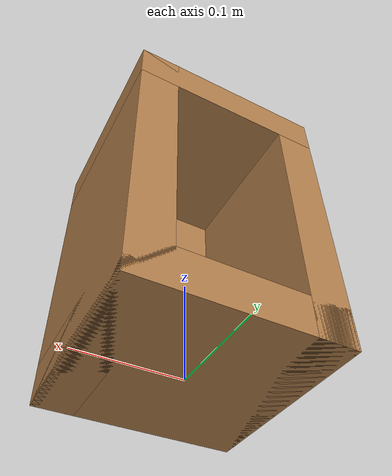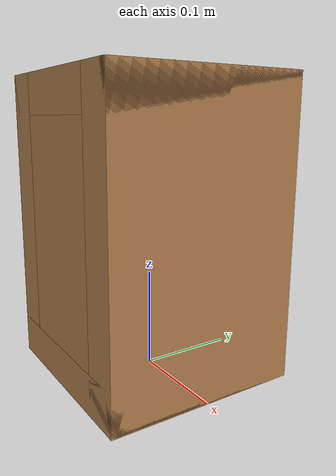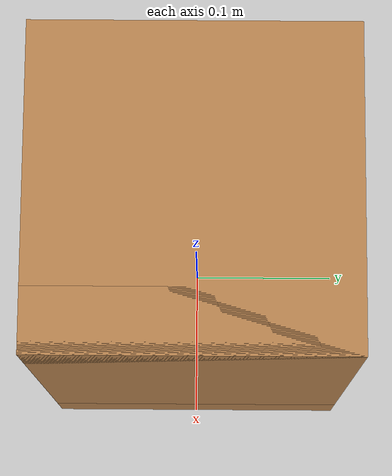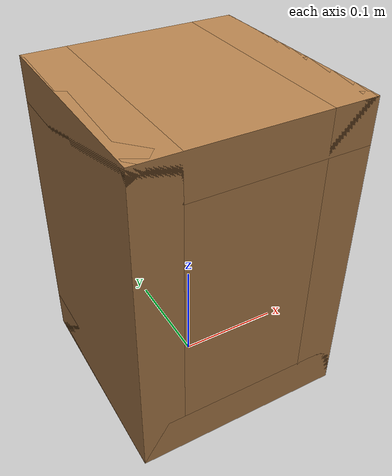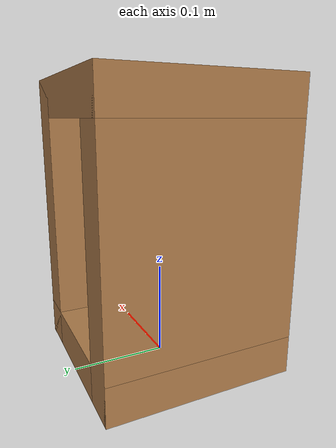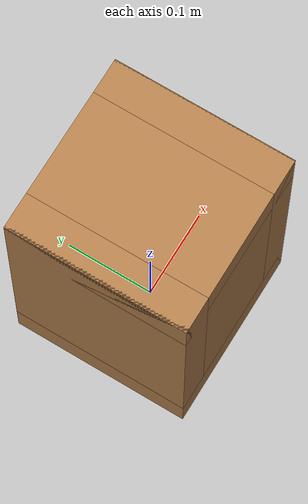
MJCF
<mujoco model="shelf">
	<asset>
		<texture file="../textures/light-wood.png" type="cube" name="light-wood" />
		<material name="MatLightWood" texture="light-wood" texrepeat="3 3" specular="0.4" shininess="0.1" />
	</asset>
	<worldbody>
		<body>
			<body name="object" pos="0 0 0">
				<body name="shelf" pos="0 0 0.15">
					<geom type="box" size="0.1 0.1 0.02" pos="0 0 -0.13" material="MatLightWood" group="0" />
					<geom type="box" size="0.1 0.1 0.02" pos="0 0 0.13" material="MatLightWood" group="0" />
					<geom type="box" size="0.02 0.1 0.15" pos="-0.08 0 0" material="MatLightWood" group="0" />
					<geom type="box" size="0.02 0.1 0.15" pos="0.08 0 0" material="MatLightWood" group="0" />
					<geom type="box" size="0.06 0.02 0.11" pos="0 -0.08 0" material="MatLightWood" group="0" />
				</body>
				<inertial pos="0 0 0" mass="10" diaginertia="0.01 0.01 0.01" />
			</body>
		</body>
	</worldbody>
</mujoco>
